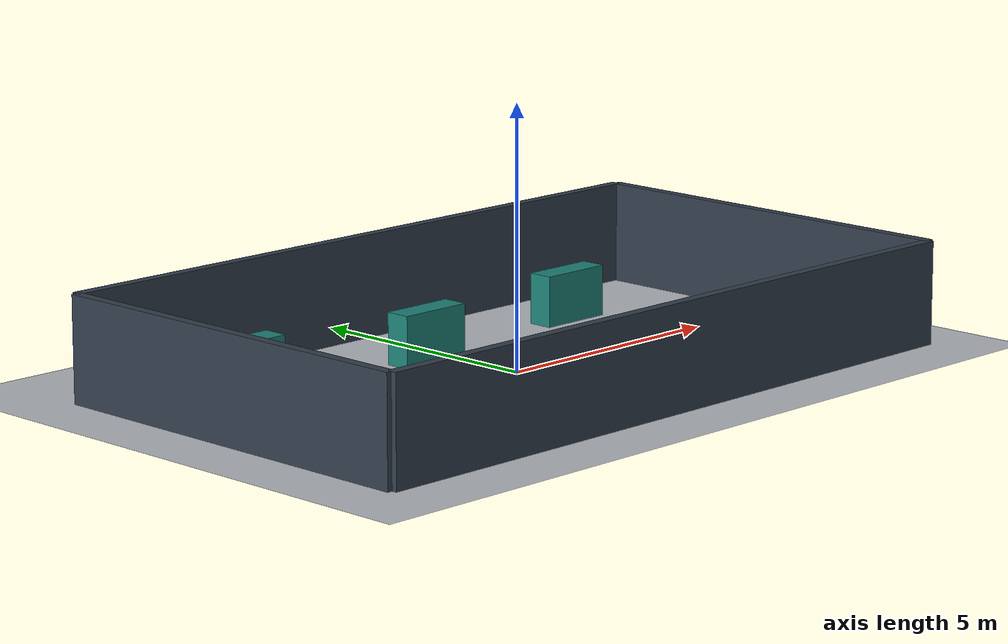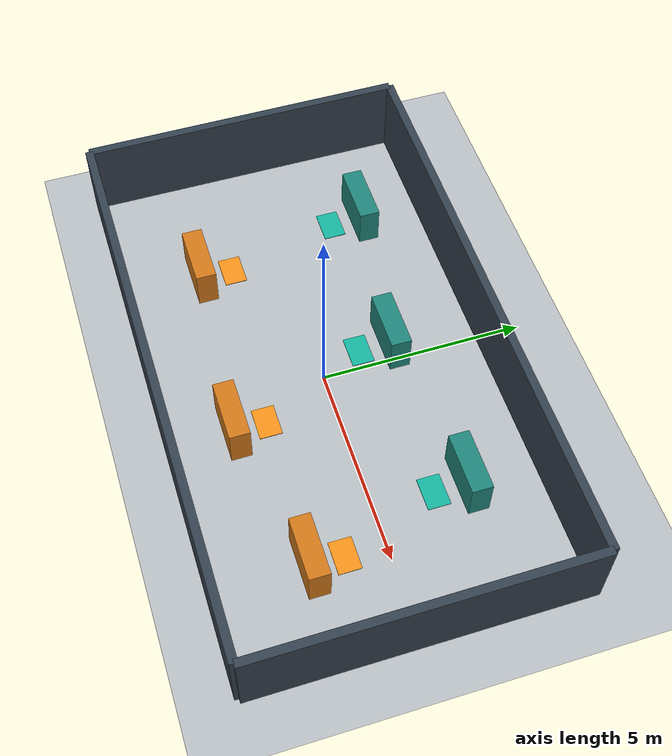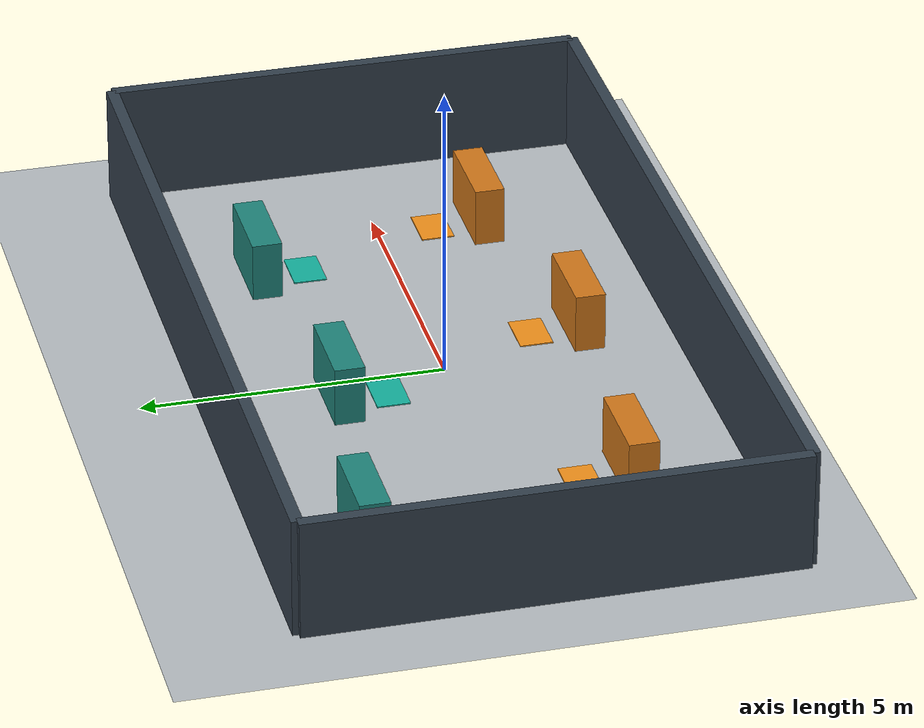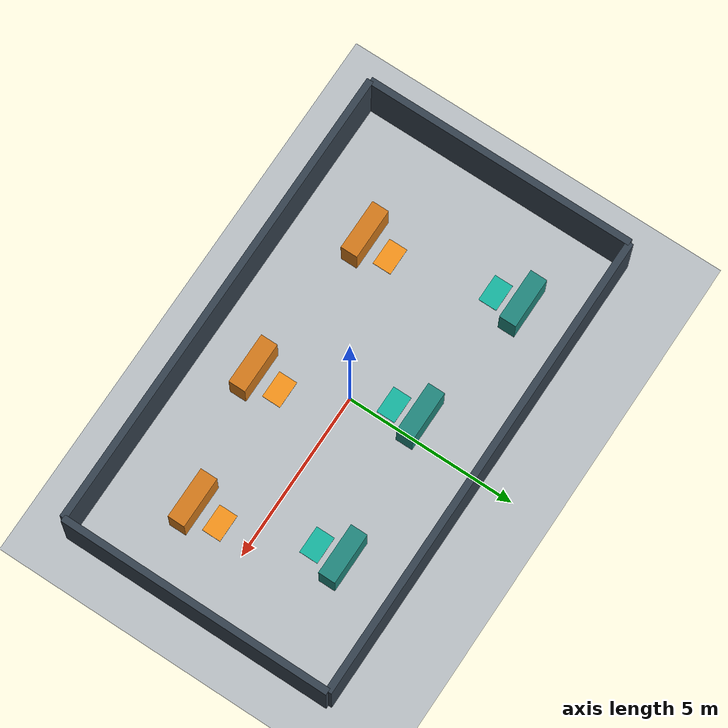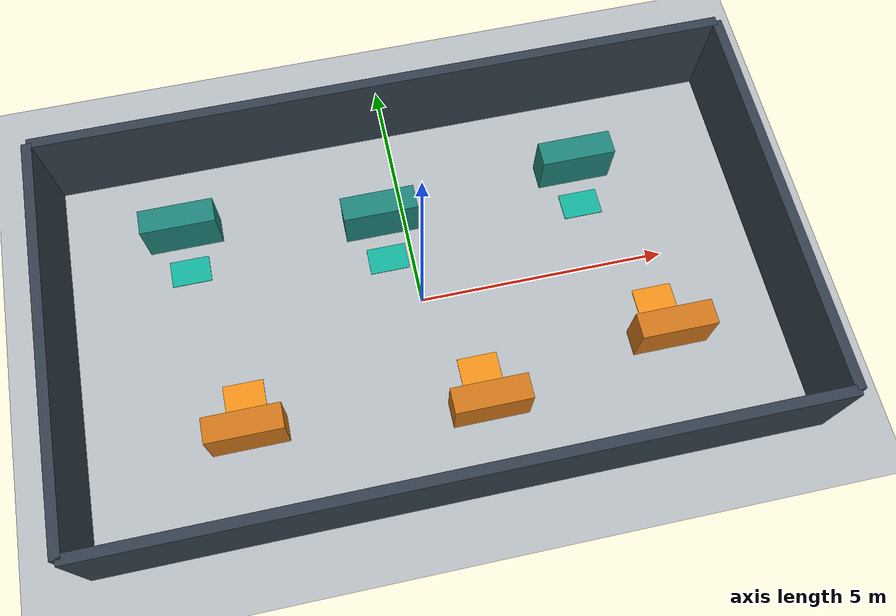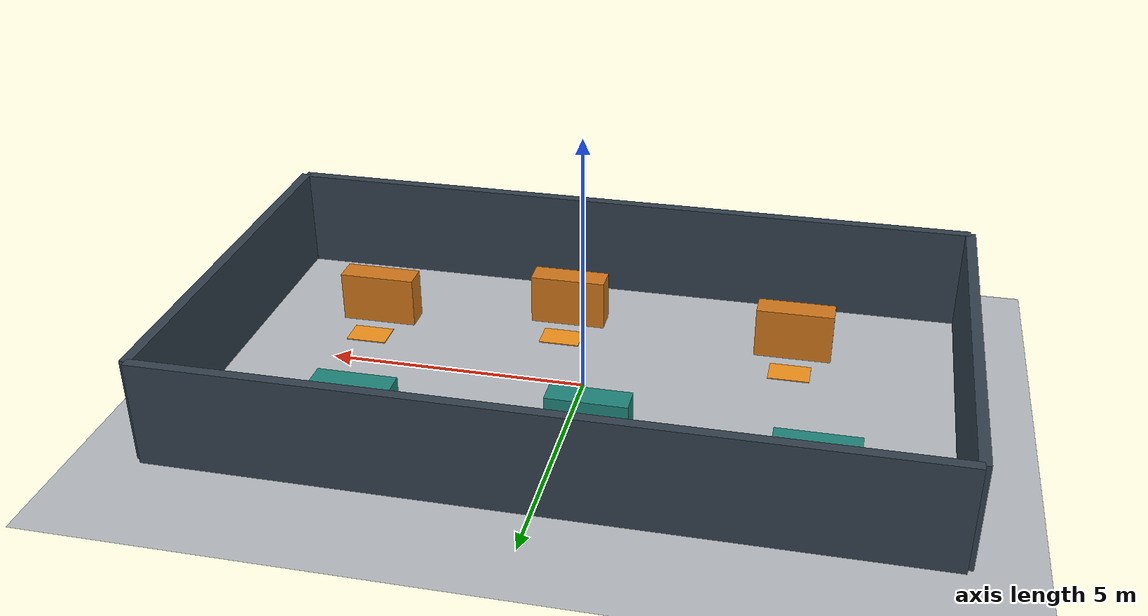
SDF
<?xml version="1.0" ?>
<sdf version="1.6">
  <world name="asymmetric_warehouse_world">
    <plugin filename="gz-sim-physics-system" name="gz::sim::systems::Physics"/>
    <plugin filename="gz-sim-user-commands-system" name="gz::sim::systems::UserCommands"/>
    <plugin filename="gz-sim-scene-broadcaster-system" name="gz::sim::systems::SceneBroadcaster"/>
    <plugin filename="gz-sim-sensors-system" name="gz::sim::systems::Sensors">
      <render_engine>ogre2</render_engine>
    </plugin>
    <plugin filename="gz-sim-imu-system" name="gz::sim::systems::Imu"/>

    <scene>
      <ambient>0.7 0.72 0.75 1</ambient>
      <background>0.82 0.85 0.88 1</background>
    </scene>

    <light type="directional" name="sun">
      <cast_shadows>true</cast_shadows>
      <pose>0 0 10 0 0 0</pose>
      <diffuse>0.9 0.9 0.9 1</diffuse>
      <specular>0.2 0.2 0.2 1</specular>
      <direction>-0.5 0.1 -0.9</direction>
    </light>

    <model name="ground_plane">
      <static>true</static>
      <link name="link">
        <collision name="collision">
          <geometry><plane><normal>0 0 1</normal><size>20 20</size></plane></geometry>
        </collision>
        <visual name="visual">
          <geometry><plane><normal>0 0 1</normal><size>20 20</size></plane></geometry>
          <material><ambient>0.72 0.74 0.76 1</ambient><diffuse>0.72 0.74 0.76 1</diffuse></material>
        </visual>
      </link>
    </model>

    <!-- The walls and shelves match the generated occupancy map. -->
    <model name="north_wall"><static>true</static><pose>0 4 1 0 0 0</pose><link name="link">
      <collision name="collision"><geometry><box><size>14 0.2 2</size></box></geometry></collision>
      <visual name="visual"><geometry><box><size>14 0.2 2</size></box></geometry><material><ambient>0.16 0.20 0.24 1</ambient><diffuse>0.20 0.25 0.30 1</diffuse></material></visual>
    </link></model>
    <model name="south_wall"><static>true</static><pose>0 -4 1 0 0 0</pose><link name="link">
      <collision name="collision"><geometry><box><size>14 0.2 2</size></box></geometry></collision>
      <visual name="visual"><geometry><box><size>14 0.2 2</size></box></geometry><material><ambient>0.16 0.20 0.24 1</ambient><diffuse>0.20 0.25 0.30 1</diffuse></material></visual>
    </link></model>
    <model name="west_wall"><static>true</static><pose>-7 0 1 0 0 0</pose><link name="link">
      <collision name="collision"><geometry><box><size>0.2 8 2</size></box></geometry></collision>
      <visual name="visual"><geometry><box><size>0.2 8 2</size></box></geometry><material><ambient>0.16 0.20 0.24 1</ambient><diffuse>0.20 0.25 0.30 1</diffuse></material></visual>
    </link></model>
    <model name="east_wall"><static>true</static><pose>7 0 1 0 0 0</pose><link name="link">
      <collision name="collision"><geometry><box><size>0.2 8 2</size></box></geometry></collision>
      <visual name="visual"><geometry><box><size>0.2 8 2</size></box></geometry><material><ambient>0.16 0.20 0.24 1</ambient><diffuse>0.20 0.25 0.30 1</diffuse></material></visual>
    </link></model>

    <model name="shelf_A1"><static>true</static><pose>-4.5 2.4 0.5 0 0 0</pose><link name="link">
      <collision name="collision"><geometry><box><size>1.5 0.5 1</size></box></geometry></collision>
      <visual name="visual"><geometry><box><size>1.5 0.5 1</size></box></geometry><material><ambient>0.10 0.38 0.36 1</ambient><diffuse>0.12 0.52 0.48 1</diffuse></material></visual>
    </link></model>
    <model name="shelf_A2"><static>true</static><pose>-0.5 1.85 0.5 0 0 0</pose><link name="link">
      <collision name="collision"><geometry><box><size>1.5 0.5 1</size></box></geometry></collision>
      <visual name="visual"><geometry><box><size>1.5 0.5 1</size></box></geometry><material><ambient>0.10 0.38 0.36 1</ambient><diffuse>0.12 0.52 0.48 1</diffuse></material></visual>
    </link></model>
    <model name="shelf_A3"><static>true</static><pose>3.7 2.25 0.5 0 0 0</pose><link name="link">
      <collision name="collision"><geometry><box><size>1.5 0.5 1</size></box></geometry></collision>
      <visual name="visual"><geometry><box><size>1.5 0.5 1</size></box></geometry><material><ambient>0.10 0.38 0.36 1</ambient><diffuse>0.12 0.52 0.48 1</diffuse></material></visual>
    </link></model>
    <model name="shelf_B1"><static>true</static><pose>-3.8 -2.05 0.5 0 0 0</pose><link name="link">
      <collision name="collision"><geometry><box><size>1.5 0.5 1</size></box></geometry></collision>
      <visual name="visual"><geometry><box><size>1.5 0.5 1</size></box></geometry><material><ambient>0.56 0.31 0.08 1</ambient><diffuse>0.82 0.47 0.10 1</diffuse></material></visual>
    </link></model>
    <model name="shelf_B2"><static>true</static><pose>0.8 -2.45 0.5 0 0 0</pose><link name="link">
      <collision name="collision"><geometry><box><size>1.5 0.5 1</size></box></geometry></collision>
      <visual name="visual"><geometry><box><size>1.5 0.5 1</size></box></geometry><material><ambient>0.56 0.31 0.08 1</ambient><diffuse>0.82 0.47 0.10 1</diffuse></material></visual>
    </link></model>
    <model name="shelf_B3"><static>true</static><pose>4.6 -1.75 0.5 0 0 0</pose><link name="link">
      <collision name="collision"><geometry><box><size>1.5 0.5 1</size></box></geometry></collision>
      <visual name="visual"><geometry><box><size>1.5 0.5 1</size></box></geometry><material><ambient>0.56 0.31 0.08 1</ambient><diffuse>0.82 0.47 0.10 1</diffuse></material></visual>
    </link></model>

    <!-- Colored floor pads make pickup and dropoff targets easy to see. -->
    <model name="pad_A1"><static>true</static><pose>-4.5 1.6 0.01 0 0 0</pose><link name="link"><visual name="visual"><geometry><box><size>0.8 0.55 0.02</size></box></geometry><material><ambient>0.08 0.56 0.50 1</ambient><diffuse>0.08 0.70 0.62 1</diffuse></material></visual></link></model>
    <model name="pad_A2"><static>true</static><pose>-0.5 1.05 0.01 0 0 0</pose><link name="link"><visual name="visual"><geometry><box><size>0.8 0.55 0.02</size></box></geometry><material><ambient>0.08 0.56 0.50 1</ambient><diffuse>0.08 0.70 0.62 1</diffuse></material></visual></link></model>
    <model name="pad_A3"><static>true</static><pose>3.7 1.45 0.01 0 0 0</pose><link name="link"><visual name="visual"><geometry><box><size>0.8 0.55 0.02</size></box></geometry><material><ambient>0.08 0.56 0.50 1</ambient><diffuse>0.08 0.70 0.62 1</diffuse></material></visual></link></model>
    <model name="pad_B1"><static>true</static><pose>-3.8 -1.25 0.01 0 0 0</pose><link name="link"><visual name="visual"><geometry><box><size>0.8 0.55 0.02</size></box></geometry><material><ambient>0.78 0.39 0.05 1</ambient><diffuse>0.95 0.57 0.10 1</diffuse></material></visual></link></model>
    <model name="pad_B2"><static>true</static><pose>0.8 -1.65 0.01 0 0 0</pose><link name="link"><visual name="visual"><geometry><box><size>0.8 0.55 0.02</size></box></geometry><material><ambient>0.78 0.39 0.05 1</ambient><diffuse>0.95 0.57 0.10 1</diffuse></material></visual></link></model>
    <model name="pad_B3"><static>true</static><pose>4.6 -0.95 0.01 0 0 0</pose><link name="link"><visual name="visual"><geometry><box><size>0.8 0.55 0.02</size></box></geometry><material><ambient>0.78 0.39 0.05 1</ambient><diffuse>0.95 0.57 0.10 1</diffuse></material></visual></link></model>
  </world>
</sdf>
